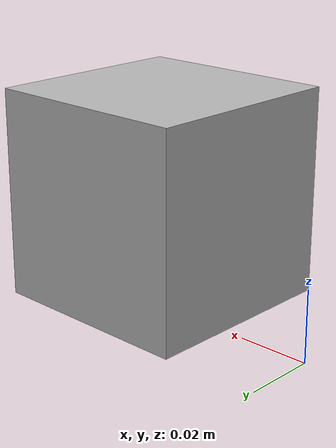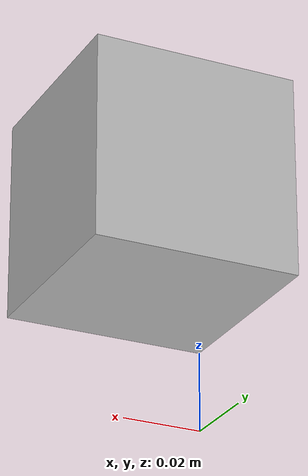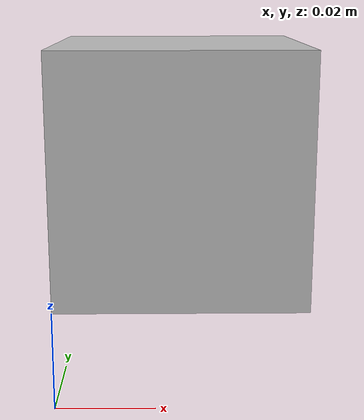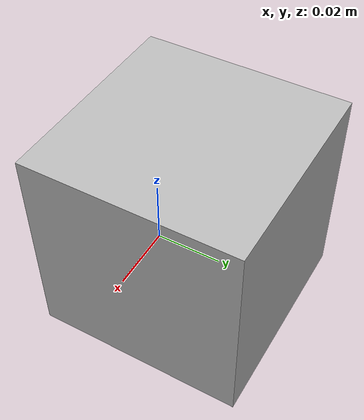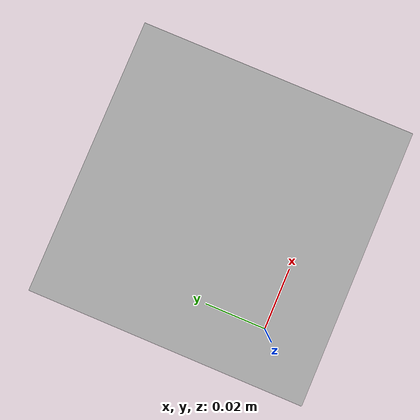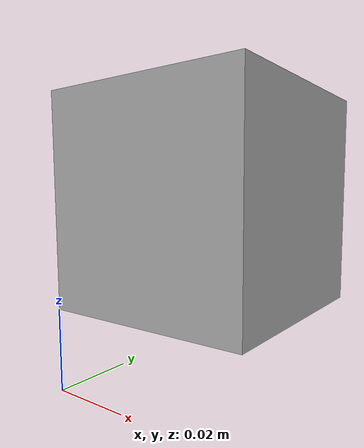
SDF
<sdf version='1.6'>
  <model name='cube'>
    <link name='object'>
      <pose frame=''>0 0 0.01 0 -0 0</pose>
      <inertial>
        <pose frame=''>0.025 0.025 0.025 0 -0 0</pose>
        <mass>0.0125</mass>
        <inertia>
          <ixx>5.20833e-05</ixx>
          <ixy>-1.41172e-21</ixy>
          <ixz>-8.64402e-38</ixz>
          <iyy>5.20833e-05</iyy>
          <iyz>0</iyz>
          <izz>5.20833e-05</izz>
        </inertia>
      </inertial>
      <collision name='object_collision'>
        <pose frame=''>0 0 0.01 1.5708 -0 0</pose>
        <geometry>
          <mesh>
            <scale>1 1 1</scale>
            <uri>model://cube/untitled.dae</uri>
          </mesh>
        </geometry>
        <surface>
          <friction>
            <ode>
              <mu>1.0</mu>
              <mu2>1.0</mu2>
            </ode>
          </friction>
          <contact>
            <ode>
              <kp>100000.0</kp>
              <kd>1.0</kd>
              <min_depth>0.0000001</min_depth>
              <max_vel>0.1</max_vel>
            </ode>
          </contact>
        </surface>
      </collision>
      <visual name='object_visual'>
        <pose frame=''>0 0 0.01 1.5708 -0 0</pose>
        <geometry>
          <mesh>
            <scale>1 1 1</scale>
            <uri>model://cube/untitled.dae</uri>
          </mesh>
        </geometry>
      </visual>
    </link>
  </model>
</sdf>
